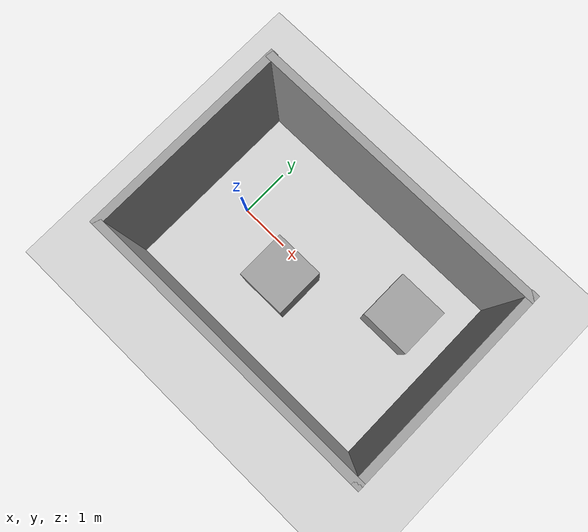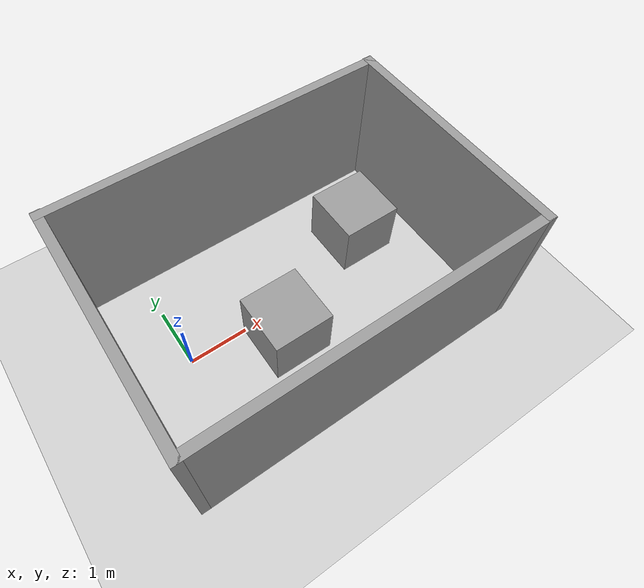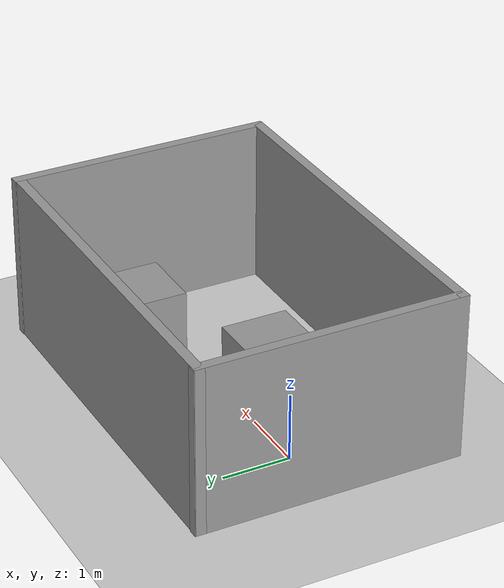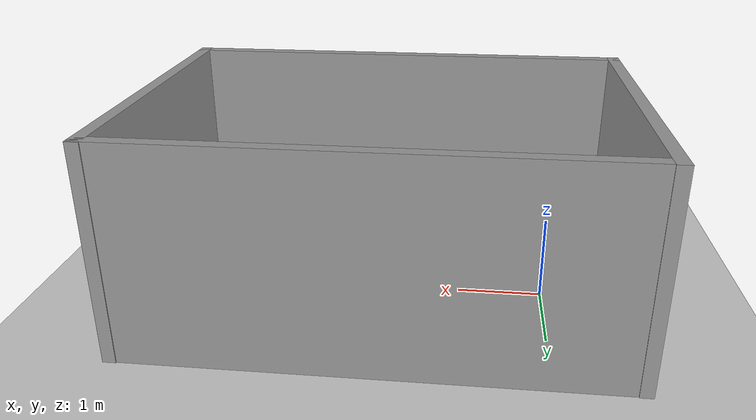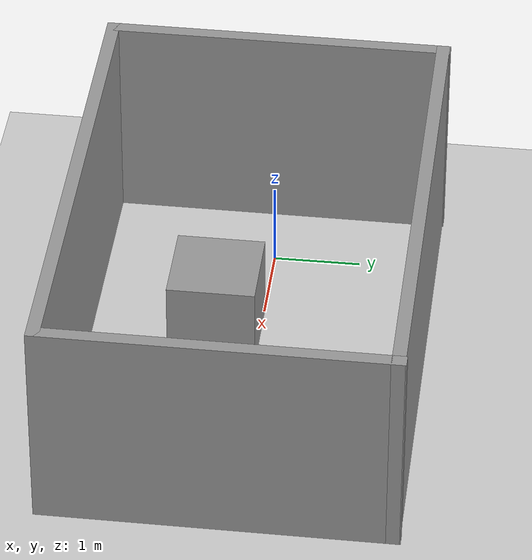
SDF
<sdf version="1.6">
 <world name="default">
  <light name="sun" type="directional">
   <pose>0 0 10 0 -0 0</pose>
   <diffuse>0.8 0.8 0.8 1</diffuse>
   <specular>0.2 0.2 0.2 1</specular>
   <attenuation>
    <range>1000</range>
    <constant>0.9</constant>
    <linear>0.01</linear>
    <quadratic>0.001</quadratic>
   </attenuation>
   <direction>-0.5 0.1 -0.9</direction>
  </light>
  <model name="ground_plane">
   <static>1</static>
   <link name="link">
    <collision name="collision">
     <geometry><plane><normal>0 0 1</normal><size>100 100</size></plane></geometry>
     <surface>
      <contact><collide_bitmask>65535</collide_bitmask></contact>
      <friction><ode><mu>100</mu><mu2>50</mu2></ode></friction>
     </surface>
    </collision>
    <visual name="visual">
     <cast_shadows>0</cast_shadows>
     <geometry><plane><normal>0 0 1</normal><size>100 100</size></plane></geometry>
     <material>
      <script><uri>file://media/materials/scripts/gazebo.material</uri><name>Gazebo/Grey</name></script>
     </material>
    </visual>
   </link>
  </model>
  <gravity>0 0 -9.8</gravity>
  <magnetic_field>6e-06 2.3e-05 -4.2e-05</magnetic_field>
  <atmosphere type="adiabatic"/>
  <physics name="default_physics" default="0" type="ode">
   <max_step_size>0.001</max_step_size>
   <real_time_factor>1</real_time_factor>
   <real_time_update_rate>1000</real_time_update_rate>
  </physics>
  <scene><ambient>0.4 0.4 0.4 1</ambient><background>0.7 0.7 0.7 1</background><shadows>1</shadows></scene>
  <audio><device>default</device></audio>
  <spherical_coordinates>
   <surface_model>EARTH_WGS84</surface_model>
   <latitude_deg>0</latitude_deg>
   <longitude_deg>0</longitude_deg>
   <elevation>0</elevation>
   <heading_deg>0</heading_deg>
  </spherical_coordinates>
  <model name="unit_box">
   <pose>1.47434 -0.499313 0.499995 -1e-05 -0 -0</pose>
   <link name="link">
    <inertial>
     <mass>1</mass>
     <inertia>
      <ixx>0.166667</ixx>
      <ixy>0</ixy>
      <ixz>0</ixz>
      <iyy>0.166667</iyy>
      <iyz>0</iyz>
      <izz>0.166667</izz>
     </inertia>
    </inertial>
    <collision name="collision"><geometry><box><size>1 1 1</size></box></geometry></collision>
    <visual name="visual">
     <geometry><box><size>1 1 1</size></box></geometry>
     <material>
      <script><name>Gazebo/Grey</name><uri>file://media/materials/scripts/gazebo.material</uri></script>
     </material>
    </visual>
   </link>
  </model>
  <model name="unit_box_0">
   <pose>3.53917 0.520319 0.499995 0 1e-05 0</pose>
   <link name="link">
    <inertial>
     <mass>1</mass>
     <inertia>
      <ixx>0.166667</ixx>
      <ixy>0</ixy>
      <ixz>0</ixz>
      <iyy>0.166667</iyy>
      <iyz>0</iyz>
      <izz>0.166667</izz>
     </inertia>
    </inertial>
    <collision name="collision"><geometry><box><size>1 1 1</size></box></geometry></collision>
    <visual name="visual">
     <geometry><box><size>1 1 1</size></box></geometry>
     <material>
      <script><name>Gazebo/Grey</name><uri>file://media/materials/scripts/gazebo.material</uri></script>
     </material>
    </visual>
   </link>
  </model>
  <model name="cage">
   <pose>1.87761 -0.081899 0 0 -0 0</pose>
   <link name="Wall_11">
    <collision name="Wall_11_Collision">
     <geometry><box><size>3.98735 0.15 2.5</size></box></geometry>
     <pose>0 0 1.25 0 -0 0</pose>
    </collision>
    <visual name="Wall_11_Visual">
     <pose>0 0 1.25 0 -0 0</pose>
     <geometry><box><size>3.98735 0.15 2.5</size></box></geometry>
     <material>
      <script><uri>file://media/materials/scripts/gazebo.material</uri><name>Gazebo/Grey</name></script>
      <ambient>1 1 1 1</ambient>
     </material>
     <meta><layer>0</layer></meta>
    </visual>
    <pose>-2.8 0 0 0 -0 -1.5708</pose>
   </link>
   <link name="Wall_12">
    <collision name="Wall_12_Collision">
     <geometry><box><size>5.75 0.15 2.5</size></box></geometry>
     <pose>0 0 1.25 0 -0 0</pose>
    </collision>
    <visual name="Wall_12_Visual">
     <pose>0 0 1.25 0 -0 0</pose>
     <geometry><box><size>5.75 0.15 2.5</size></box></geometry>
     <material>
      <script><uri>file://media/materials/scripts/gazebo.material</uri><name>Gazebo/Grey</name></script>
      <ambient>1 1 1 1</ambient>
     </material>
     <meta><layer>0</layer></meta>
    </visual>
    <pose>0 -1.91867 0 0 -0 0</pose>
   </link>
   <link name="Wall_13">
    <collision name="Wall_13_Collision">
     <geometry><box><size>3.98735 0.15 2.5</size></box></geometry>
     <pose>0 0 1.25 0 -0 0</pose>
    </collision>
    <visual name="Wall_13_Visual">
     <pose>0 0 1.25 0 -0 0</pose>
     <geometry><box><size>3.98735 0.15 2.5</size></box></geometry>
     <material>
      <script><uri>file://media/materials/scripts/gazebo.material</uri><name>Gazebo/Grey</name></script>
      <ambient>1 1 1 1</ambient>
     </material>
     <meta><layer>0</layer></meta>
    </visual>
    <pose>2.8 0 0 0 -0 1.5708</pose>
   </link>
   <link name="Wall_14">
    <collision name="Wall_14_Collision">
     <geometry><box><size>5.75 0.15 2.5</size></box></geometry>
     <pose>0 0 1.25 0 -0 0</pose>
    </collision>
    <visual name="Wall_14_Visual">
     <pose>0 0 1.25 0 -0 0</pose>
     <geometry><box><size>5.75 0.15 2.5</size></box></geometry>
     <material>
      <script><uri>file://media/materials/scripts/gazebo.material</uri><name>Gazebo/Grey</name></script>
      <ambient>1 1 1 1</ambient>
     </material>
     <meta><layer>0</layer></meta>
    </visual>
    <pose>0 1.90717 0 0 -0 3.14159</pose>
   </link>
   <static>1</static>
  </model>
 </world>
</sdf>
